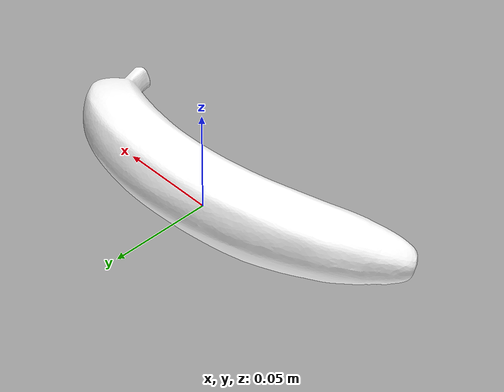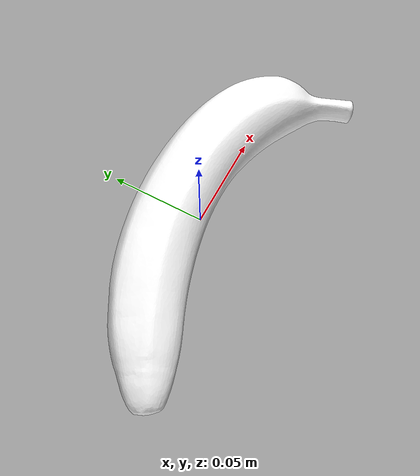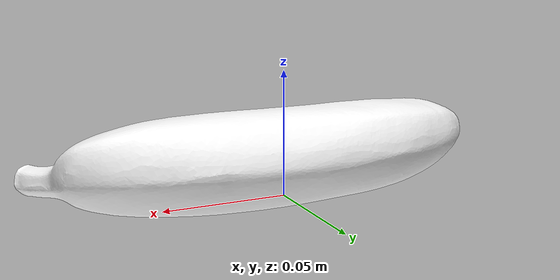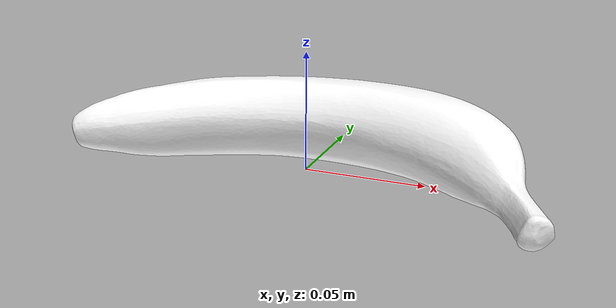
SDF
<?xml version="1.0"?>
<sdf version="1.6">
  <model name="banana">
    <link name="link">
      <inertial>
        <mass>1.131</mass>
        <inertia>
          <ixx>0.006288831</ixx>
          <ixy>0.0</ixy>
          <ixz>0.0</ixz>
          <iyy>0.006795802</iyy>
          <iyz>0.0</iyz>
          <izz>0.001303383</izz>
        </inertia>
        <pose>0 0 0 0 0 0</pose>
      </inertial>
      <collision name="collision">
        <geometry>
          <mesh>
            <uri>model://banana/meshes/collision.dae</uri>
          </mesh>
        </geometry>
      </collision>
      <visual name="visual">
        <geometry>
          <mesh>
            <uri>model://banana/meshes/textured.dae</uri>
          </mesh>
        </geometry>
        <material>
          <ambient>1 1 1 1</ambient>
          <diffuse>1 1 1 1</diffuse>
          <specular>0 0 0 1</specular>
          <pbr>
            <metal>
              <albedo_map>model://banana/materials/textures/banana_texture_map.png</albedo_map>
              <metalness>0</metalness>
              <roughness>0.8</roughness>
            </metal>
          </pbr>
        </material>
      </visual>
    </link>
  </model>
</sdf>
